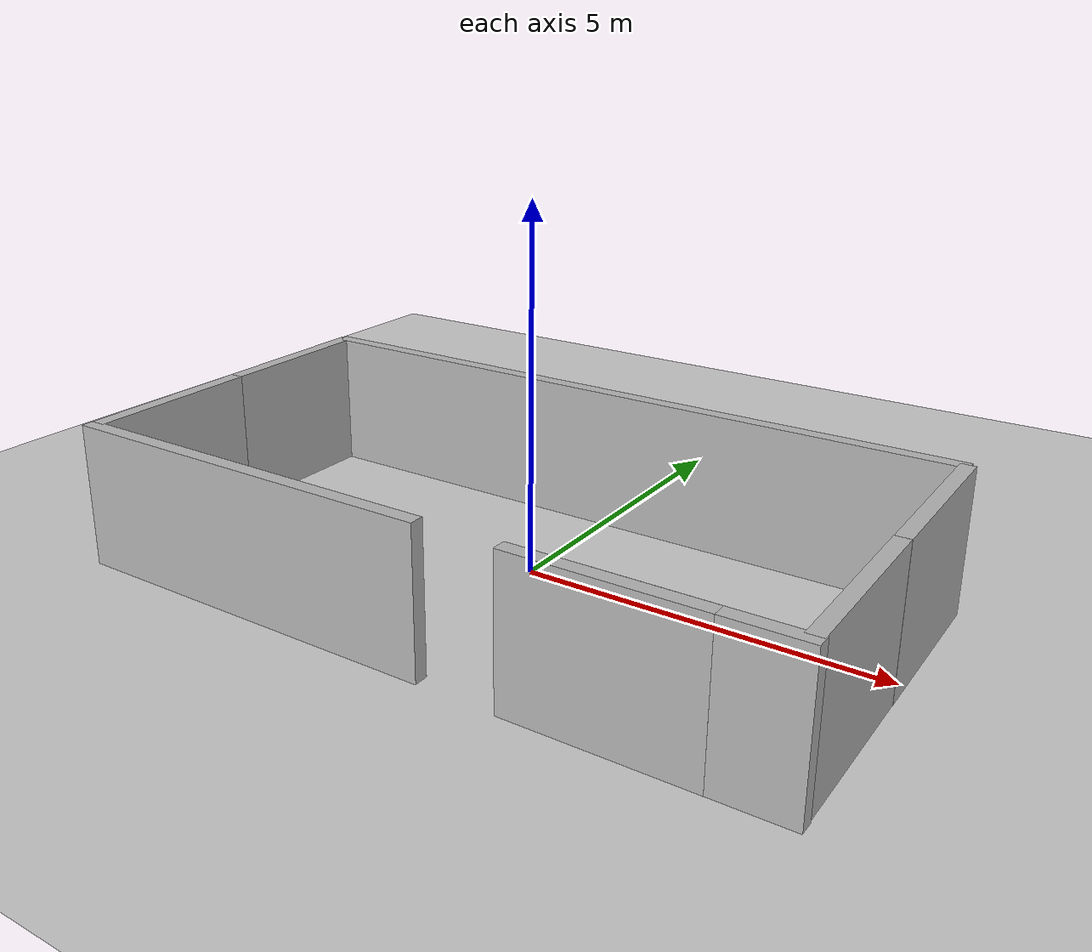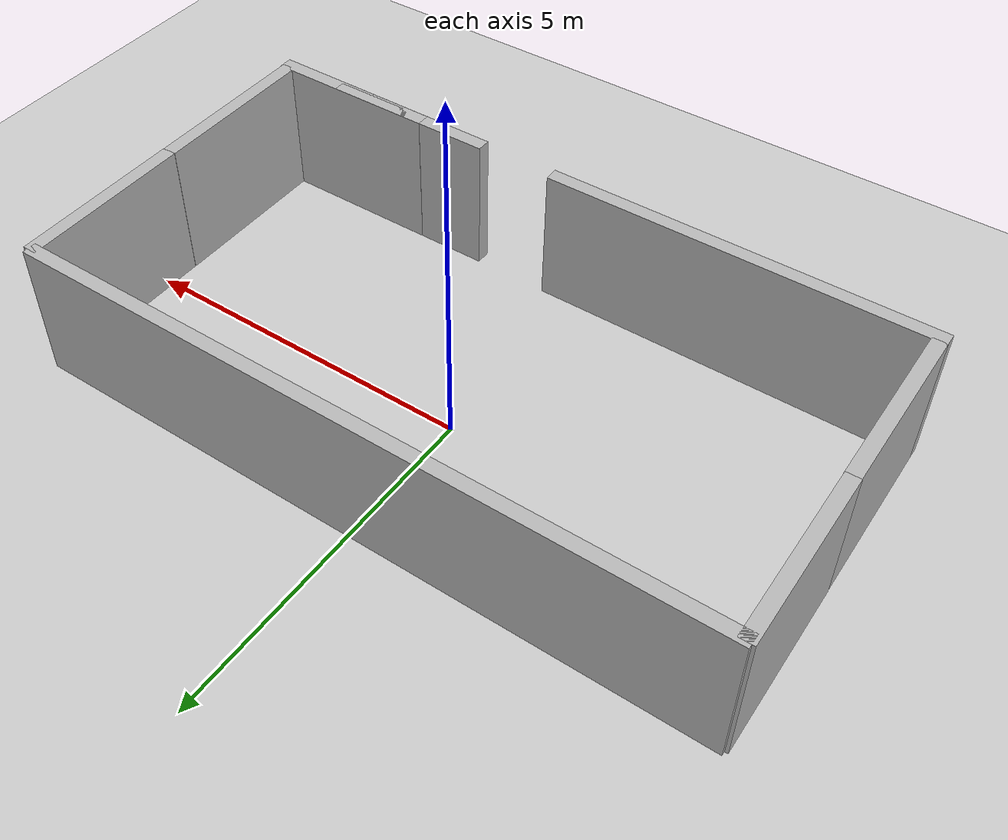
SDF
<sdf version="1.6">
 <world name="default">
  <physics name="default_physics" default="0" type="ode">
   <ode>
    <solver>
     <type>quick</type>
     <iters>20</iters>
     <sor>1</sor>
     <use_dynamic_moi_rescaling>0</use_dynamic_moi_rescaling>
    </solver>
    <constraints>
     <cfm>0</cfm>
     <erp>0.2</erp>
     <contact_max_correcting_vel>100</contact_max_correcting_vel>
     <contact_surface_layer>0</contact_surface_layer>
    </constraints>
   </ode>
   <real_time_update_rate>1000</real_time_update_rate>
   <max_step_size>0.001</max_step_size>
   <real_time_factor>1</real_time_factor>
   <max_contacts>20</max_contacts>
  </physics>
  <light name="sun" type="directional">
   <pose>0 0 10 0 -0 0</pose>
   <diffuse>0.8 0.8 0.8 1</diffuse>
   <specular>0.2 0.2 0.2 1</specular>
   <attenuation>
    <range>1000</range>
    <constant>0.9</constant>
    <linear>0.01</linear>
    <quadratic>0.001</quadratic>
   </attenuation>
   <direction>0.5 0.1 -0.9</direction>
  </light>
  <model name="ground_plane">
   <static>1</static>
   <link name="link">
    <collision name="collision">
     <geometry><plane><normal>0 0 1</normal><size>100 100</size></plane></geometry>
     <surface><friction><ode><mu>100</mu><mu2>50</mu2></ode></friction></surface>
    </collision>
    <visual name="visual">
     <cast_shadows>0</cast_shadows>
     <geometry><plane><normal>0 0 1</normal><size>100 100</size></plane></geometry>
     <material>
      <script><uri>file://media/materials/scripts/gazebo.material</uri><name>Gazebo/Grey</name></script>
     </material>
    </visual>
    <velocity_decay><linear>0</linear><angular>0</angular></velocity_decay>
   </link>
  </model>
  <model name="wall_2_model">
   <pose>0 2 1 0 -0 0</pose>
   <static>1</static>
   <link name="wall_2_body">
    <inertial>
     <mass>1</mass>
     <inertia><ixx>1</ixx><ixy>0</ixy><ixz>0</ixz><iyy>1</iyy><iyz>0</iyz><izz>1</izz></inertia>
    </inertial>
    <collision name="collision"><geometry><box><size>10 0.2 2</size></box></geometry></collision>
    <visual name="visual"><geometry><box><size>10 0.2 2</size></box></geometry></visual>
    <velocity_decay><linear>0</linear><angular>0</angular></velocity_decay>
   </link>
  </model>
  <model name="wall_5_model">
   <pose>-2.25 -3 1 0 -0 0</pose>
   <static>1</static>
   <link name="wall_5_body">
    <inertial>
     <mass>1</mass>
     <inertia><ixx>1</ixx><ixy>0</ixy><ixz>0</ixz><iyy>1</iyy><iyz>0</iyz><izz>1</izz></inertia>
    </inertial>
    <collision name="collision"><geometry><box><size>5.5 0.2 2</size></box></geometry></collision>
    <visual name="visual"><geometry><box><size>5.5 0.2 2</size></box></geometry></visual>
    <velocity_decay><linear>0</linear><angular>0</angular></velocity_decay>
   </link>
  </model>
  <model name="wall_6_model">
   <pose>3.86143 -3.009 1 0 -0 0</pose>
   <static>1</static>
   <link name="wall_6_body">
    <inertial>
     <mass>1</mass>
     <inertia><ixx>1</ixx><ixy>0</ixy><ixz>0</ixz><iyy>1</iyy><iyz>0</iyz><izz>1</izz></inertia>
    </inertial>
    <collision name="collision"><geometry><box><size>2.5 0.2 2</size></box></geometry></collision>
    <visual name="visual"><geometry><box><size>2.5 0.2 2</size></box></geometry></visual>
    <velocity_decay><linear>0</linear><angular>0</angular></velocity_decay>
   </link>
  </model>
  <scene><ambient>0.2 0.2 0.2 1</ambient><background>0.7 0.7 0.7 1</background><shadows>1</shadows></scene>
  <gravity>0 0 -9.81</gravity>
  <magnetic_field>6e-06 2.3e-05 -4.2e-05</magnetic_field>
  <atmosphere type="adiabatic"/>
  <spherical_coordinates>
   <surface_model>EARTH_WGS84</surface_model>
   <latitude_deg>0</latitude_deg>
   <longitude_deg>0</longitude_deg>
   <elevation>0</elevation>
   <heading_deg>0</heading_deg>
  </spherical_coordinates>
  <model name="wall_6_model_clone">
   <pose>4.99085 -1.71419 1 0 -0 1.5786</pose>
   <static>1</static>
   <link name="wall_6_body">
    <inertial>
     <mass>1</mass>
     <inertia><ixx>1</ixx><ixy>0</ixy><ixz>0</ixz><iyy>1</iyy><iyz>0</iyz><izz>1</izz></inertia>
    </inertial>
    <collision name="collision"><geometry><box><size>2.5 0.2 2</size></box></geometry></collision>
    <visual name="visual"><geometry><box><size>2.5 0.2 2</size></box></geometry></visual>
    <velocity_decay><linear>0</linear><angular>0</angular></velocity_decay>
   </link>
  </model>
  <model name="wall_6_model_clone_clone">
   <pose>4.9743 0.777194 1 0 -0 1.5786</pose>
   <static>1</static>
   <link name="wall_6_body">
    <inertial>
     <mass>1</mass>
     <inertia><ixx>1</ixx><ixy>0</ixy><ixz>0</ixz><iyy>1</iyy><iyz>0</iyz><izz>1</izz></inertia>
    </inertial>
    <collision name="collision"><geometry><box><size>2.5 0.2 2</size></box></geometry></collision>
    <visual name="visual"><geometry><box><size>2.5 0.2 2</size></box></geometry></visual>
    <velocity_decay><linear>0</linear><angular>0</angular></velocity_decay>
   </link>
  </model>
  <model name="wall_6_model_clone_clone_0">
   <pose>-4.9106 -1.67921 1 0 -0 1.5786</pose>
   <static>1</static>
   <link name="wall_6_body">
    <inertial>
     <mass>1</mass>
     <inertia><ixx>1</ixx><ixy>0</ixy><ixz>0</ixz><iyy>1</iyy><iyz>0</iyz><izz>1</izz></inertia>
    </inertial>
    <collision name="collision"><geometry><box><size>2.5 0.2 2</size></box></geometry></collision>
    <visual name="visual"><geometry><box><size>2.5 0.2 2</size></box></geometry></visual>
    <velocity_decay><linear>0</linear><angular>0</angular></velocity_decay>
   </link>
  </model>
  <model name="wall_6_model_clone_clone_1">
   <pose>-4.93343 0.793809 1 0 -0 1.5786</pose>
   <static>1</static>
   <link name="wall_6_body">
    <inertial>
     <mass>1</mass>
     <inertia><ixx>1</ixx><ixy>0</ixy><ixz>0</ixz><iyy>1</iyy><iyz>0</iyz><izz>1</izz></inertia>
    </inertial>
    <collision name="collision"><geometry><box><size>2.5 0.2 2</size></box></geometry></collision>
    <visual name="visual"><geometry><box><size>2.5 0.2 2</size></box></geometry></visual>
    <velocity_decay><linear>0</linear><angular>0</angular></velocity_decay>
   </link>
  </model>
  <model name="wall_6_model_clone_0">
   <pose>2.83806 -3.01045 1 0 -0 0</pose>
   <static>1</static>
   <link name="wall_6_body">
    <inertial>
     <mass>1</mass>
     <inertia><ixx>1</ixx><ixy>0</ixy><ixz>0</ixz><iyy>1</iyy><iyz>0</iyz><izz>1</izz></inertia>
    </inertial>
    <collision name="collision"><geometry><box><size>2.5 0.2 2</size></box></geometry></collision>
    <visual name="visual"><geometry><box><size>2.5 0.2 2</size></box></geometry></visual>
    <velocity_decay><linear>0</linear><angular>0</angular></velocity_decay>
   </link>
  </model>
 </world>
</sdf>
